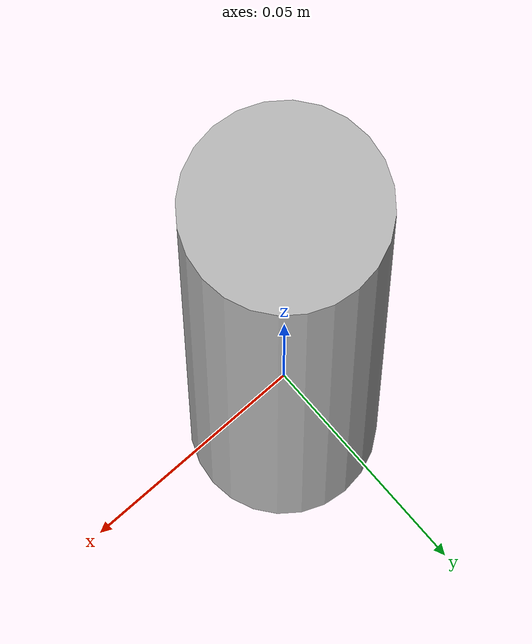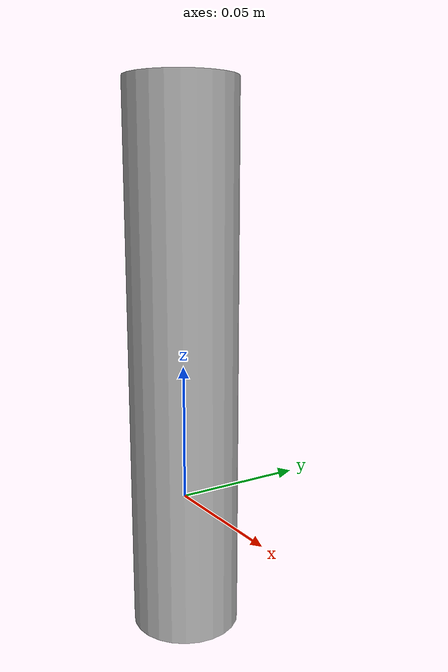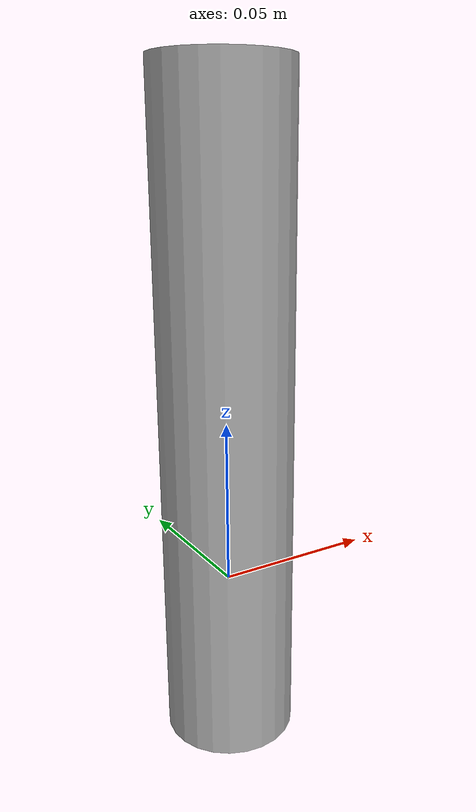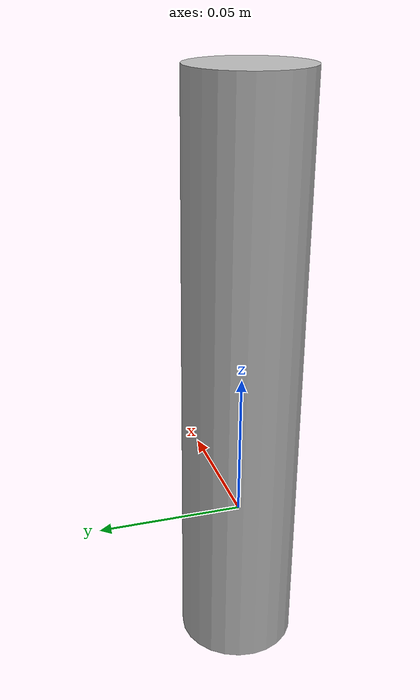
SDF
<sdf version='1.6'>
  <model name='arm'>
    <link name='arm'>
      <pose frame=''>0 0 0 0 -0 0</pose>
      <inertial>
        <pose frame=''>0 0 0.05 0 -0 0</pose>
        <mass>2</mass>
        <inertia>
          <ixx>0.00186667</ixx>
          <ixy>0</ixy>
          <ixz>0</ixz>
          <iyy>0.00186667</iyy>
          <iyz>0</iyz>
          <izz>0.0004</izz>
        </inertia>
      </inertial>
      <collision name='arm_collision'>
        <pose frame=''>0 0 0.05 0 -0 0</pose>
        <geometry>
          <cylinder>
            <length>0.2</length>
            <radius>0.02</radius>
          </cylinder>
        </geometry>
      </collision>
      <visual name='arm_visual'>
        <pose frame=''>0 0 0.05 0 -0 0</pose>
        <geometry>
          <cylinder>
            <length>0.2</length>
            <radius>0.02</radius>
          </cylinder>
        </geometry>
      </visual>
    </link>

    <rmevo>
      <slots>
        <slot name="0">
          <pos>0 0 0.1</pos>
          <norm>0 0 1</norm>
          <tan>1 0 0</tan>
        </slot>
        <slot name="1">
          <pos>0 0 -0.1</pos>
          <norm>0 0 -1</norm>
          <tan>1 0 0</tan>
        </slot>
      </slots>
    </rmevo>

  </model>
</sdf>
